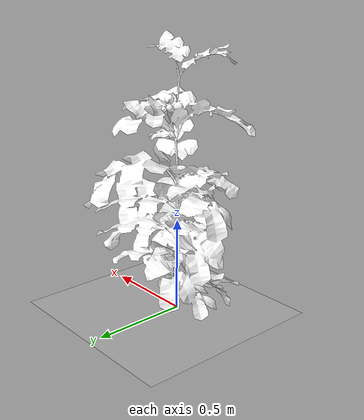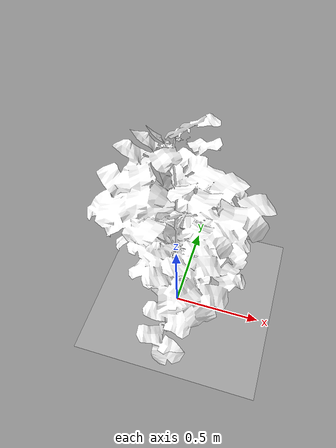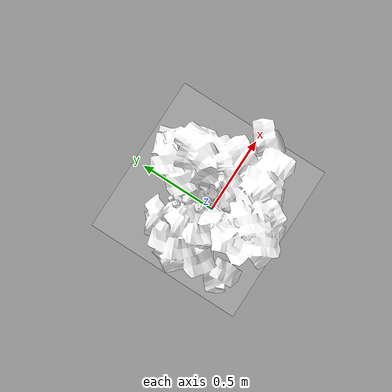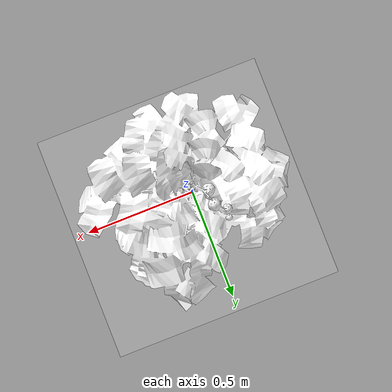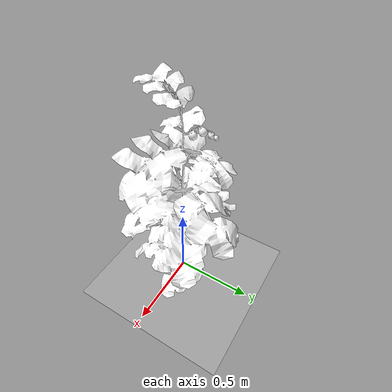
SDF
<sdf version='1.7'>
    <world name='field'>
        <physics name='1ms' type='ignored'>
            <max_step_size>0.001</max_step_size>
            <real_time_factor>1</real_time_factor>
            <real_time_update_rate>1000</real_time_update_rate>
        </physics>
        <plugin name='ignition::gazebo::systems::Physics' filename='ignition-gazebo-physics-system'/>
        <plugin name='ignition::gazebo::systems::UserCommands' filename='ignition-gazebo-user-commands-system'/>
        <plugin name='ignition::gazebo::systems::SceneBroadcaster' filename='ignition-gazebo-scene-broadcaster-system'/>
        <plugin filename="ignition-gazebo-sensors-system" name="ignition::gazebo::systems::Sensors">
            <render_engine>ogre2</render_engine>
        </plugin>
        <scene>
            <ambient>1 1 1 1</ambient>
            <background>0.8 0.8 0.8 1</background>
            <shadows>1</shadows>
        </scene>

        <include>
             <pose>0 0 10 0 -0 0</pose>
            <uri>
                https://fuel.gazebosim.org/1.0/OpenRobotics/models/Sun
            </uri>
        </include>

        <gravity>0 0 -9.8</gravity>
        <magnetic_field>6e-06 2.3e-05 -4.2e-05</magnetic_field>
        <atmosphere type='adiabatic'/>

        <include>
            <uri>ground</uri>
            <name>ground</name>
            <pose>5.0 5.0 0 0 0 0</pose>
        </include>

        <include>
            <uri>tomato_0</uri>
            <name>tomato_0</name>
            <pose>0 0 0 0 0 0</pose>
        </include>

    </world>
</sdf>

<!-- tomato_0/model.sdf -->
<sdf version="1.6">
  <model name="tomato_0">
    <static>true</static>
    <link name="link">
      <collision name="collision">
        <geometry>
          <box>
            <size>.1 .1 1</size>
          </box>
        </geometry>
      </collision>
      <visual name="branch">
        <geometry>
          <mesh>
            <uri>file://tomato_0/meshes/tomato.dae</uri>
            <submesh>
              <name>Branch1</name>
            </submesh>
          </mesh>
        </geometry>
        <material>
          <diffuse>1.0 1.0 1.0</diffuse>
          <pbr>
            <metal>
              <albedo_map>file://tomato_0/materials/textures/AG15brn1.png</albedo_map>
            </metal>
          </pbr>
        </material>
          <plugin filename="ignition-gazebo-label-system" name="ignition::gazebo::systems::Label">
            <label>1</label>
          </plugin>
      </visual>
      <visual name="leaf1">
        <geometry>
          <mesh>
            <uri>file://tomato_0/meshes/tomato.dae</uri>
            <submesh>
              <name>Leaf1</name>
            </submesh>
          </mesh>
        </geometry>
        <material>
          <diffuse>1.0 1.0 1.0</diffuse>
          <pbr>
            <metal>
              <albedo_map>file://tomato_0/materials/textures/AG15lef1.png</albedo_map>
            </metal>
          </pbr>
        </material>
          <plugin filename="ignition-gazebo-label-system" name="ignition::gazebo::systems::Label">
            <label>1</label>
          </plugin>
      </visual>
      <visual name="leaf2">
        <geometry>
          <mesh>
            <uri>file://tomato_0/meshes/tomato.dae</uri>
            <submesh>
              <name>Leaf2</name>
            </submesh>
          </mesh>
        </geometry>
        <material>
          <diffuse>1.0 1.0 1.0</diffuse>
          <pbr>
            <metal>
              <albedo_map>file://tomato_0/materials/textures/AG15lef2.png</albedo_map>
            </metal>
          </pbr>
        </material>
          <plugin filename="ignition-gazebo-label-system" name="ignition::gazebo::systems::Label">
            <label>1</label>
          </plugin>
      </visual>
      <visual name="fruit1">
        <geometry>
          <mesh>
            <uri>file://tomato_0/meshes/tomato.dae</uri>
            <submesh>
              <name>Fruit1</name>
            </submesh>
          </mesh>
        </geometry>
        <material>
          <diffuse>1.0 1.0 1.0</diffuse>
          <pbr>
            <metal>
              <albedo_map>file://tomato_0/materials/textures/AG15frt1.png</albedo_map>
            </metal>
          </pbr>
        </material>
          <plugin filename="ignition-gazebo-label-system" name="ignition::gazebo::systems::Label">
            <label>1</label>
          </plugin>
      </visual>
      <visual name="fruit2">
        <geometry>
          <mesh>
            <uri>file://tomato_0/meshes/tomato.dae</uri>
            <submesh>
              <name>Fruit2</name>
            </submesh>
          </mesh>
        </geometry>
        <material>
          <diffuse>1.0 1.0 1.0</diffuse>
          <pbr>
            <metal>
              <albedo_map>file://tomato_0/materials/textures/AG15frt2.png</albedo_map>
            </metal>
          </pbr>
        </material>
          <plugin filename="ignition-gazebo-label-system" name="ignition::gazebo::systems::Label">
            <label>1</label>
          </plugin>
      </visual>
      <visual name="fruit3">
        <geometry>
          <mesh>
            <uri>file://tomato_0/meshes/tomato.dae</uri>
            <submesh>
              <name>Fruit3</name>
            </submesh>
          </mesh>
        </geometry>
        <material>
          <diffuse>1.0 1.0 1.0</diffuse>
          <pbr>
            <metal>
              <albedo_map>file://tomato_0/materials/textures/AG15frt3.png</albedo_map>
            </metal>
          </pbr>
        </material>
      </visual>
          <plugin filename="ignition-gazebo-label-system" name="ignition::gazebo::systems::Label">
            <label>1</label>
          </plugin>
      <visual name="fruit4">
        <geometry>
          <mesh>
            <uri>file://tomato_0/meshes/tomato.dae</uri>
            <submesh>
              <name>Fruit4</name>
            </submesh>
          </mesh>
        </geometry>
        <material>
          <diffuse>1.0 1.0 1.0</diffuse>
          <pbr>
            <metal>
              <albedo_map>file://tomato_0/materials/textures/AG15frt4.png</albedo_map>
            </metal>
          </pbr>
        </material>
          <plugin filename="ignition-gazebo-label-system" name="ignition::gazebo::systems::Label">
            <label>1</label>
          </plugin>
      </visual>
      <visual name="blossom1">
        <geometry>
          <mesh>
            <uri>file://tomato_0/meshes/tomato.dae</uri>
            <submesh>
              <name>Blossom1</name>
            </submesh>
          </mesh>
        </geometry>
        <material>
          <diffuse>1.0 1.0 1.0</diffuse>
          <pbr>
            <metal>
              <albedo_map>file://tomato_0/materials/textures/AG15blo1.png</albedo_map>
            </metal>
          </pbr>
        </material>
          <plugin filename="ignition-gazebo-label-system" name="ignition::gazebo::systems::Label">
            <label>1</label>
          </plugin>
      </visual>
      <visual name="blossom2">
        <geometry>
          <mesh>
            <uri>file://tomato_0/meshes/tomato.dae</uri>
            <submesh>
              <name>Blossom2</name>
            </submesh>
          </mesh>
        </geometry>
        <material>
          <diffuse>1.0 1.0 1.0</diffuse>
          <pbr>
            <metal>
              <albedo_map>file://tomato_0/materials/textures/AG15blo2.png</albedo_map>
            </metal>
          </pbr>
        </material>
          <plugin filename="ignition-gazebo-label-system" name="ignition::gazebo::systems::Label">
            <label>1</label>
          </plugin>
      </visual>
      <visual name="blossom3">
        <geometry>
          <mesh>
            <uri>file://tomato_0/meshes/tomato.dae</uri>
            <submesh>
              <name>Blossom3</name>
            </submesh>
          </mesh>
        </geometry>
        <material>
          <diffuse>1.0 1.0 1.0</diffuse>
          <pbr>
            <metal>
              <albedo_map>file://tomato_0/materials/textures/AG15blo3.png</albedo_map>
            </metal>
          </pbr>
        </material>
          <plugin filename="ignition-gazebo-label-system" name="ignition::gazebo::systems::Label">
            <label>1</label>
          </plugin>
      </visual>
    </link>
  </model>
</sdf>
